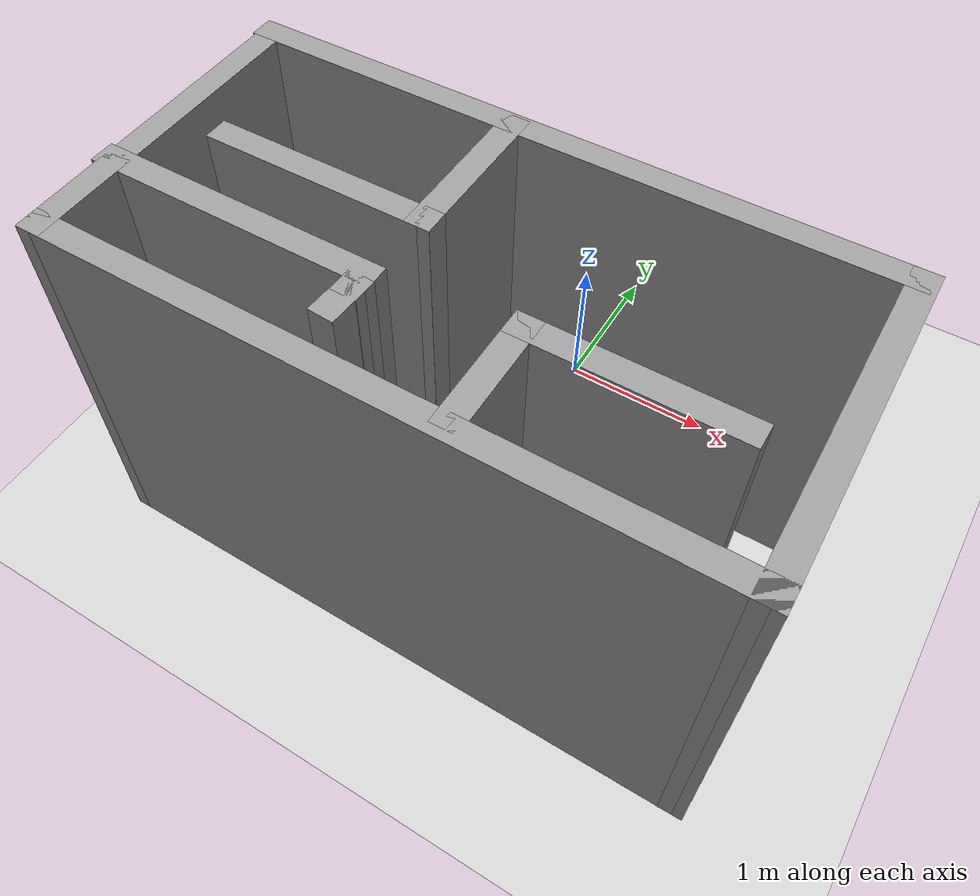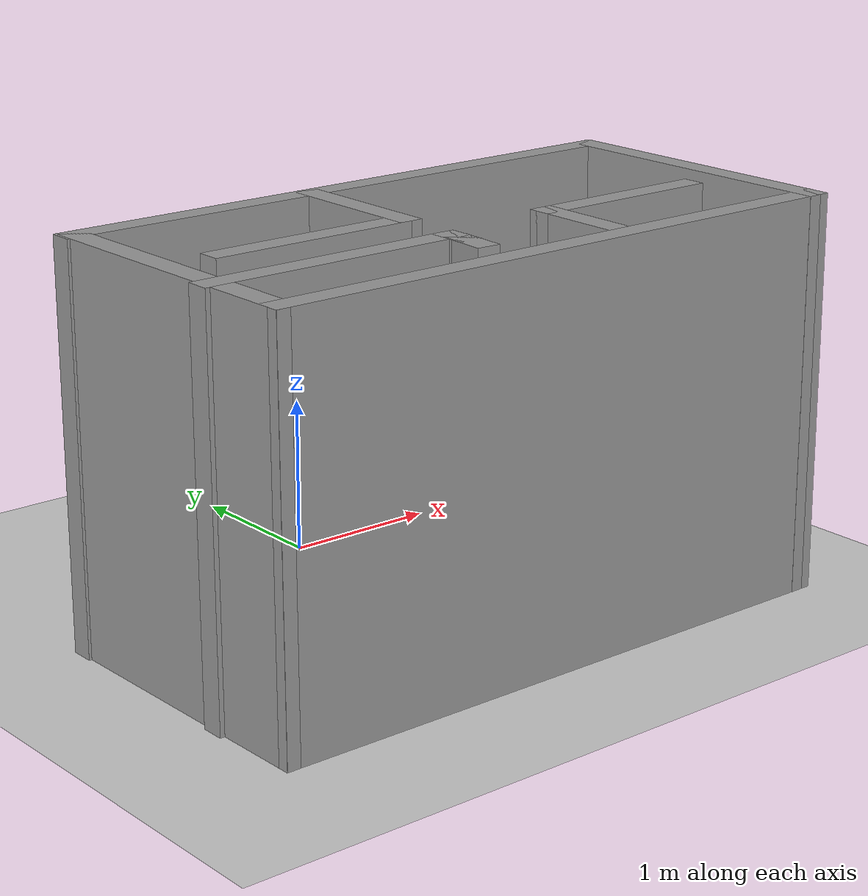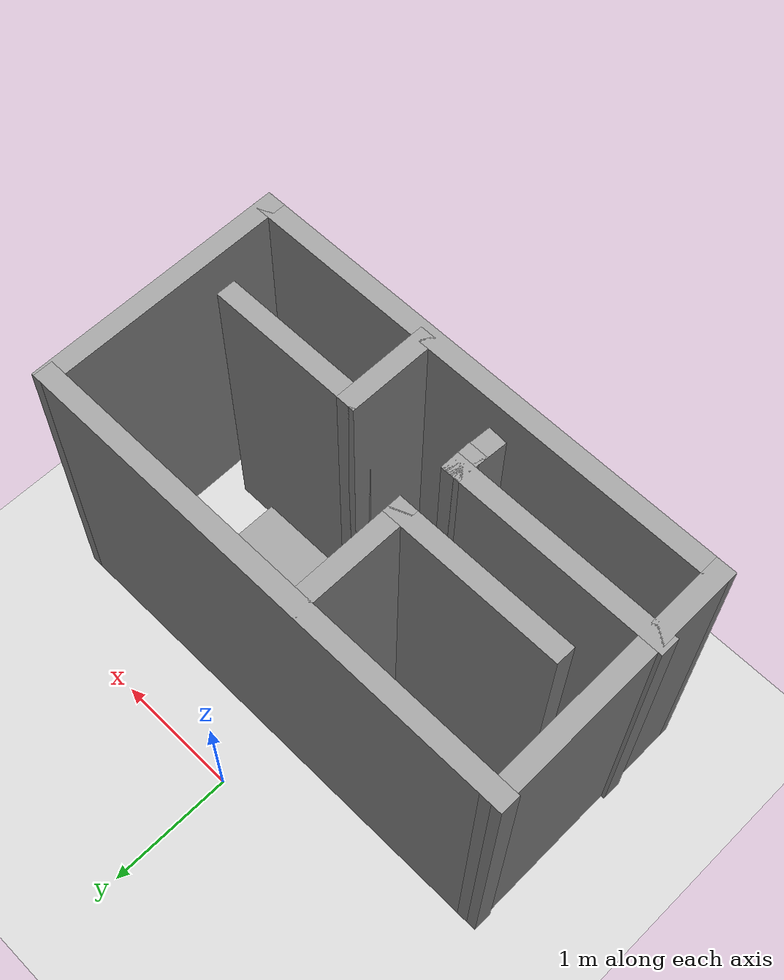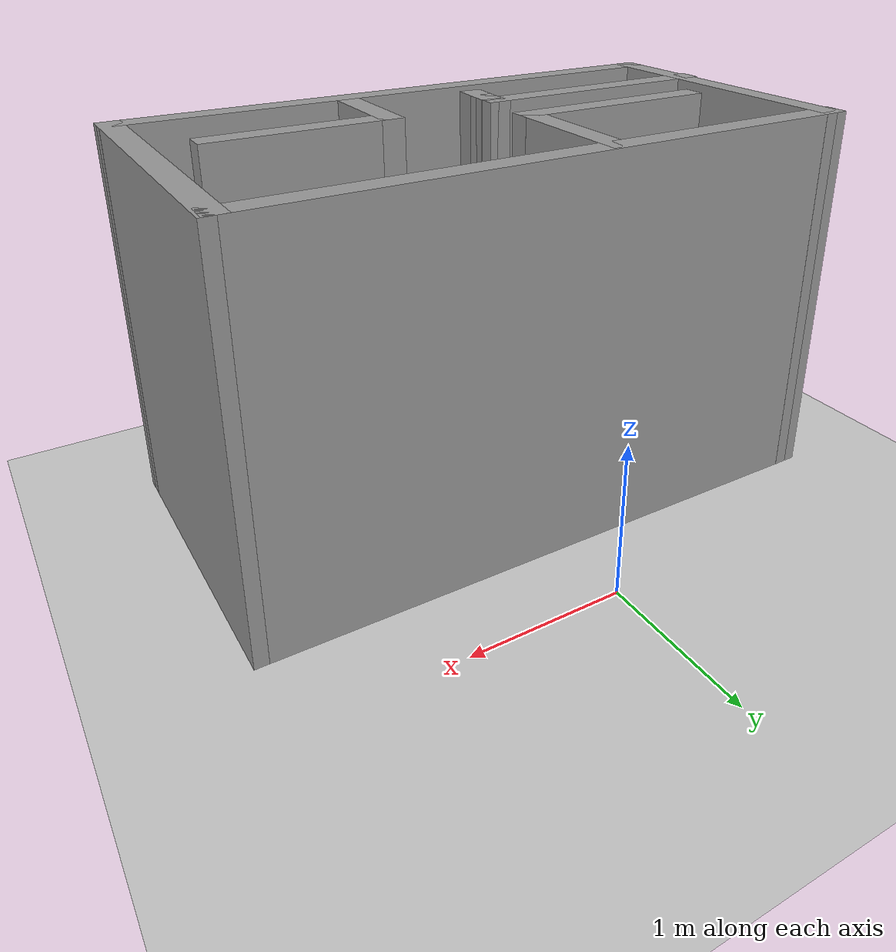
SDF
<sdf version="1.7">
 <world name="default">
  <light name="sun" type="directional">
   <pose>0 0 10 0 -0 0</pose>
   <diffuse>0.8 0.8 0.8 1</diffuse>
   <specular>0.2 0.2 0.2 1</specular>
   <attenuation>
    <range>1000</range>
    <constant>0.9</constant>
    <linear>0.01</linear>
    <quadratic>0.001</quadratic>
   </attenuation>
   <direction>-0.5 0.1 -0.9</direction>
   <spot><inner_angle>0</inner_angle><outer_angle>0</outer_angle><falloff>0</falloff></spot>
  </light>
  <model name="ground_plane">
   <static>1</static>
   <link name="link">
    <collision name="collision">
     <geometry><plane><normal>0 0 1</normal><size>100 100</size></plane></geometry>
     <surface><friction><ode><mu>100</mu><mu2>50</mu2></ode></friction></surface>
    </collision>
    <visual name="visual">
     <cast_shadows>0</cast_shadows>
     <geometry><plane><normal>0 0 1</normal><size>100 100</size></plane></geometry>
     <material>
      <script><uri>file://media/materials/scripts/gazebo.material</uri><name>Gazebo/Grey</name></script>
     </material>
    </visual>
   </link>
  </model>
  <gravity>0 0 -9.8</gravity>
  <magnetic_field>6e-06 2.3e-05 -4.2e-05</magnetic_field>
  <atmosphere type="adiabatic"/>
  <physics type="ode">
   <max_step_size>0.001</max_step_size>
   <real_time_factor>1</real_time_factor>
   <real_time_update_rate>1000</real_time_update_rate>
  </physics>
  <scene><ambient>0.4 0.4 0.4 1</ambient><background>0.7 0.7 0.7 1</background><shadows>1</shadows></scene>
  <audio><device>default</device></audio>
  <spherical_coordinates>
   <surface_model>EARTH_WGS84</surface_model>
   <latitude_deg>0</latitude_deg>
   <longitude_deg>0</longitude_deg>
   <elevation>0</elevation>
   <heading_deg>0</heading_deg>
  </spherical_coordinates>
  <model name="room">
   <pose>0.025778 -1.27551 0 0 -0 0</pose>
   <link name="Wall_10">
    <collision name="Wall_10_Collision">
     <geometry><box><size>1.40301 0.15 2.5</size></box></geometry>
     <pose>0 0 1.25 0 -0 0</pose>
    </collision>
    <visual name="Wall_10_Visual">
     <pose>0 0 1.25 0 -0 0</pose>
     <geometry><box><size>1.40301 0.15 2.5</size></box></geometry>
     <material>
      <script><uri>file://media/materials/scripts/gazebo.material</uri><name>Gazebo/Grey</name></script>
      <ambient>1 1 1 1</ambient>
     </material>
     <meta><layer>0</layer></meta>
    </visual>
    <pose>-0.934039 -0.174706 0 0 -0 -3.13986</pose>
   </link>
   <link name="Wall_12">
    <collision name="Wall_12_Collision">
     <geometry><box><size>1.75 0.15 2.5</size></box></geometry>
     <pose>0 0 1.25 0 -0 0</pose>
    </collision>
    <visual name="Wall_12_Visual">
     <pose>0 0 1.25 0 -0 0</pose>
     <geometry><box><size>1.75 0.15 2.5</size></box></geometry>
     <material>
      <script><uri>file://media/materials/scripts/gazebo.material</uri><name>Gazebo/Grey</name></script>
      <ambient>1 1 1 1</ambient>
     </material>
     <meta><layer>0</layer></meta>
    </visual>
    <pose>-1.14274 -0.636662 0 0 -0 0</pose>
   </link>
   <link name="Wall_13">
    <collision name="Wall_13_Collision">
     <geometry><box><size>0.25 0.15 2.5</size></box></geometry>
     <pose>0 0 1.25 0 -0 0</pose>
    </collision>
    <visual name="Wall_13_Visual">
     <pose>0 0 1.25 0 -0 0</pose>
     <geometry><box><size>0.25 0.15 2.5</size></box></geometry>
     <material>
      <script><uri>file://media/materials/scripts/gazebo.material</uri><name>Gazebo/Grey</name></script>
      <ambient>1 1 1 1</ambient>
     </material>
     <meta><layer>0</layer></meta>
    </visual>
    <pose>-0.342735 -0.686662 0 0 -0 -1.5708</pose>
   </link>
   <link name="Wall_14">
    <collision name="Wall_14_Collision">
     <geometry><box><size>0.31087 0.15 2.5</size></box></geometry>
     <pose>0 0 1.25 0 -0 0</pose>
    </collision>
    <visual name="Wall_14_Visual">
     <pose>0 0 1.25 0 -0 0</pose>
     <geometry><box><size>0.31087 0.15 2.5</size></box></geometry>
     <material>
      <script><uri>file://media/materials/scripts/gazebo.material</uri><name>Gazebo/Grey</name></script>
      <ambient>1 1 1 1</ambient>
     </material>
     <meta><layer>0</layer></meta>
    </visual>
    <pose>-0.347083 -0.817097 0 0 -0 -1.6248</pose>
   </link>
   <link name="Wall_16">
    <collision name="Wall_16_Collision">
     <geometry><box><size>0.75 0.15 2.5</size></box></geometry>
     <pose>0 0 1.25 0 -0 0</pose>
    </collision>
    <visual name="Wall_16_Visual">
     <pose>0 0 1.25 0 -0 0</pose>
     <geometry><box><size>0.75 0.15 2.5</size></box></geometry>
     <material>
      <script><uri>file://media/materials/scripts/gazebo.material</uri><name>Gazebo/Grey</name></script>
      <ambient>1 1 1 1</ambient>
     </material>
     <meta><layer>0</layer></meta>
    </visual>
    <pose>0.465961 -0.84101 0 0 -0 1.5708</pose>
   </link>
   <link name="Wall_17">
    <collision name="Wall_17_Collision">
     <geometry><box><size>1.25 0.15 2.5</size></box></geometry>
     <pose>0 0 1.25 0 -0 0</pose>
    </collision>
    <visual name="Wall_17_Visual">
     <pose>0 0 1.25 0 -0 0</pose>
     <geometry><box><size>1.25 0.15 2.5</size></box></geometry>
     <material>
      <script><uri>file://media/materials/scripts/gazebo.material</uri><name>Gazebo/Grey</name></script>
      <ambient>1 1 1 1</ambient>
     </material>
     <meta><layer>0</layer></meta>
    </visual>
    <pose>1.01596 -0.54101 0 0 -0 0</pose>
   </link>
   <link name="Wall_3">
    <collision name="Wall_3_Collision">
     <geometry><box><size>4 0.15 2.5</size></box></geometry>
     <pose>0 0 1.25 0 -0 0</pose>
    </collision>
    <visual name="Wall_3_Visual">
     <pose>0 0 1.25 0 -0 0</pose>
     <geometry><box><size>4 0.15 2.5</size></box></geometry>
     <material>
      <script><uri>file://media/materials/scripts/gazebo.material</uri><name>Gazebo/Grey</name></script>
      <ambient>1 1 1 1</ambient>
     </material>
     <meta><layer>0</layer></meta>
    </visual>
    <pose>-0.017735 0.693772 0 0 -0 0</pose>
   </link>
   <link name="Wall_4">
    <collision name="Wall_4_Collision">
     <geometry><box><size>2.0438 0.15 2.5</size></box></geometry>
     <pose>0 0 1.25 0 -0 0</pose>
    </collision>
    <visual name="Wall_4_Visual">
     <pose>0 0 1.25 0 -0 0</pose>
     <geometry><box><size>2.0438 0.15 2.5</size></box></geometry>
     <material>
      <script><uri>file://media/materials/scripts/gazebo.material</uri><name>Gazebo/Grey</name></script>
      <ambient>1 1 1 1</ambient>
     </material>
     <meta><layer>0</layer></meta>
    </visual>
    <pose>1.93335 -0.252967 0 0 -0 -1.56161</pose>
   </link>
   <link name="Wall_5">
    <collision name="Wall_5_Collision">
     <geometry><box><size>4 0.15 2.5</size></box></geometry>
     <pose>0 0 1.25 0 -0 0</pose>
    </collision>
    <visual name="Wall_5_Visual">
     <pose>0 0 1.25 0 -0 0</pose>
     <geometry><box><size>4 0.15 2.5</size></box></geometry>
     <material>
      <script><uri>file://media/materials/scripts/gazebo.material</uri><name>Gazebo/Grey</name></script>
      <ambient>1 1 1 1</ambient>
     </material>
     <meta><layer>0</layer></meta>
    </visual>
    <pose>0.017048 -1.19971 0 0 -0 3.14159</pose>
   </link>
   <link name="Wall_6">
    <collision name="Wall_6_Collision">
     <geometry><box><size>2.0438 0.15 2.5</size></box></geometry>
     <pose>0 0 1.25 0 -0 0</pose>
    </collision>
    <visual name="Wall_6_Visual">
     <pose>0 0 1.25 0 -0 0</pose>
     <geometry><box><size>2.0438 0.15 2.5</size></box></geometry>
     <material>
      <script><uri>file://media/materials/scripts/gazebo.material</uri><name>Gazebo/Grey</name></script>
      <ambient>1 1 1 1</ambient>
     </material>
     <meta><layer>0</layer></meta>
    </visual>
    <pose>-1.91665 -0.252967 0 0 -0 1.57998</pose>
   </link>
   <link name="Wall_9">
    <collision name="Wall_9_Collision">
     <geometry><box><size>1 0.15 2.5</size></box></geometry>
     <pose>0 0 1.25 0 -0 0</pose>
    </collision>
    <visual name="Wall_9_Visual">
     <pose>0 0 1.25 0 -0 0</pose>
     <geometry><box><size>1 0.15 2.5</size></box></geometry>
     <material>
      <script><uri>file://media/materials/scripts/gazebo.material</uri><name>Gazebo/Grey</name></script>
      <ambient>1 1 1 1</ambient>
     </material>
     <meta><layer>0</layer></meta>
    </visual>
    <pose>-0.307952 0.251381 0 0 -0 -1.5708</pose>
   </link>
   <static>1</static>
  </model>
  <model name="unit_box">
   <pose>0.65433 -1.24152 0.466632 0 -0 9.1e-05</pose>
   <link name="link">
    <inertial>
     <mass>1</mass>
     <inertia>
      <ixx>0.166667</ixx>
      <ixy>0</ixy>
      <ixz>0</ixz>
      <iyy>0.166667</iyy>
      <iyz>0</iyz>
      <izz>0.166667</izz>
     </inertia>
    </inertial>
    <collision name="collision"><geometry><box><size>0.658729 0.43994 0.933264</size></box></geometry></collision>
    <visual name="visual">
     <geometry><box><size>0.658729 0.43994 0.933264</size></box></geometry>
     <material>
      <script><name>Gazebo/Grey</name><uri>file://media/materials/scripts/gazebo.material</uri></script>
     </material>
    </visual>
   </link>
  </model>
 </world>
</sdf>
